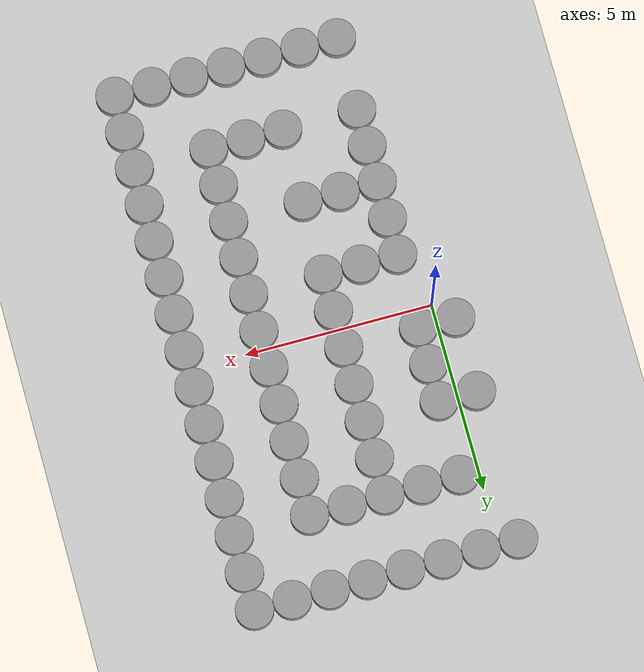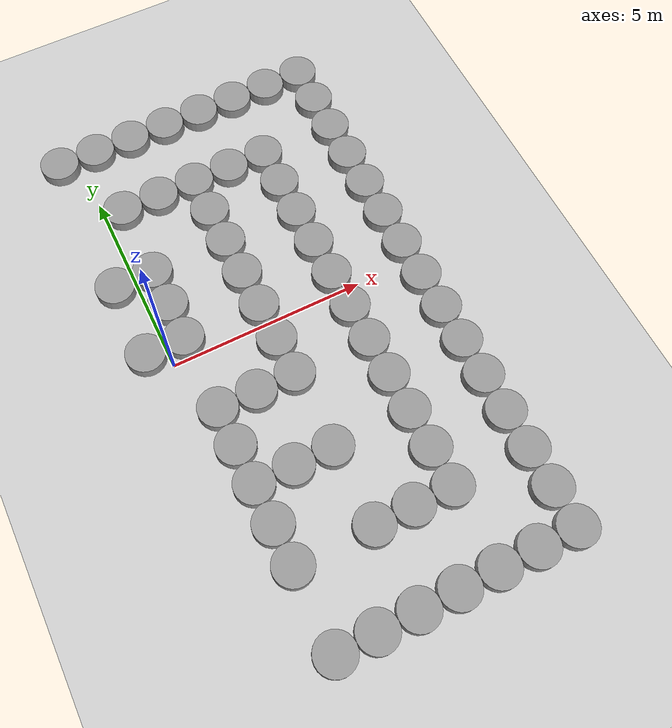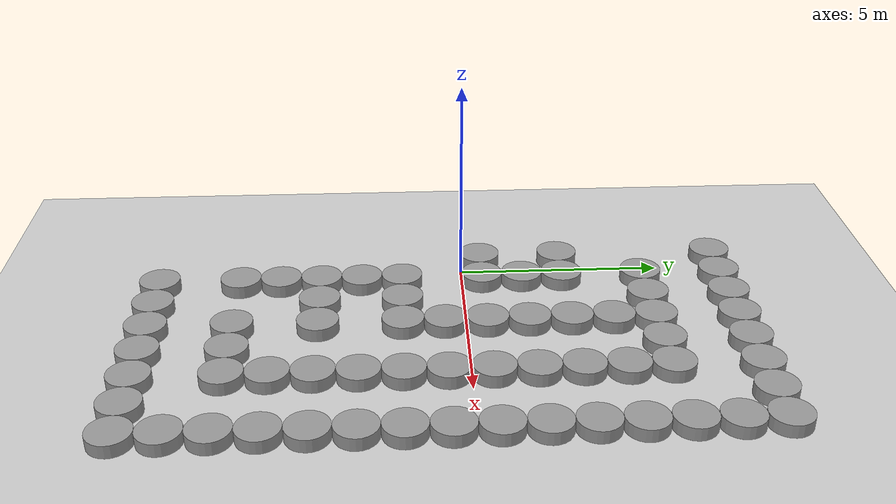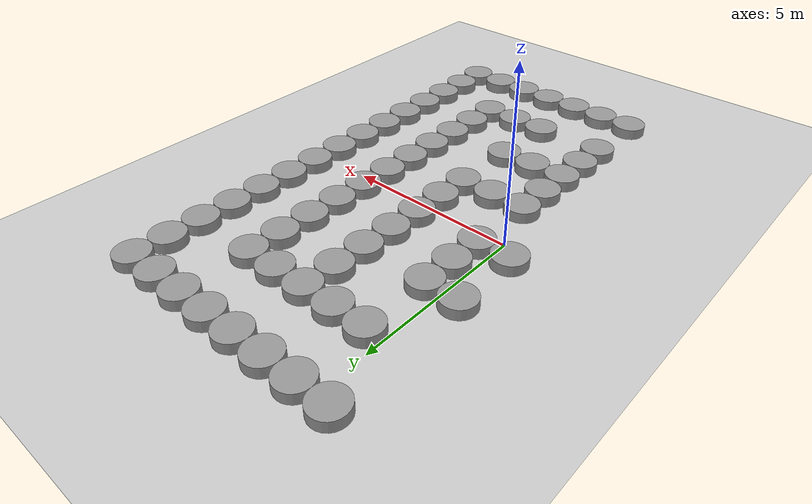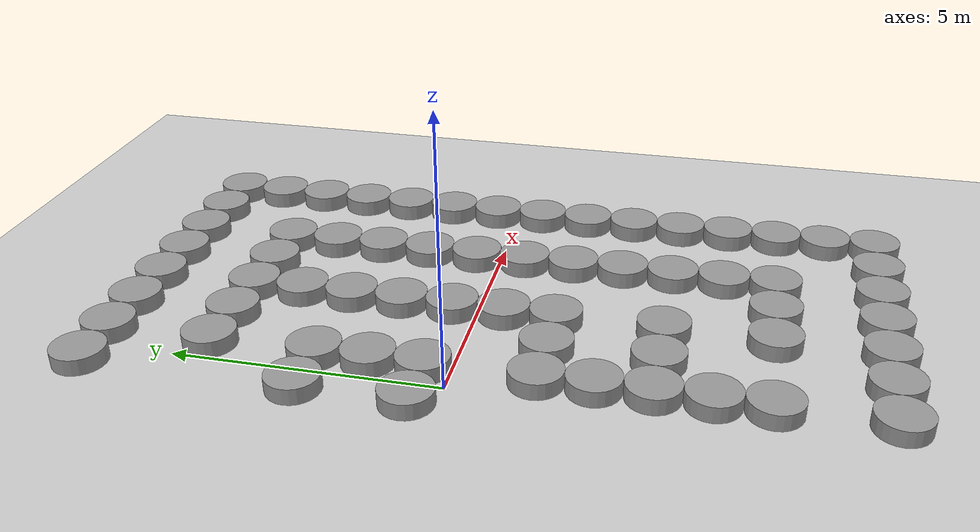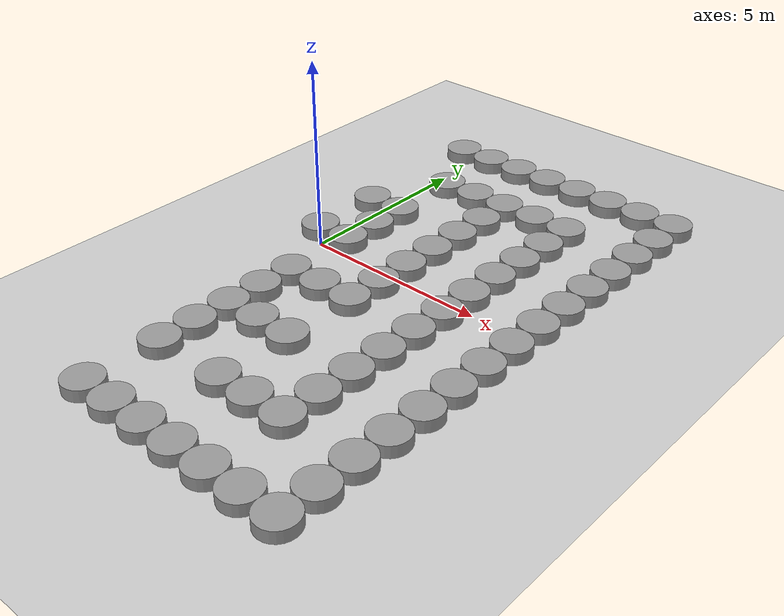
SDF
<sdf version="1.8">
 <world name="block_maze">
  <model name="ground_plane">
   <static>true</static>
   <link name="link">
    <collision name="collision">
     <geometry><plane><normal>0 0 1</normal><size>100 100</size></plane></geometry>
    </collision>
    <visual name="visual">
     <geometry><plane><normal>0 0 1</normal><size>100 100</size></plane></geometry>
     <material><ambient>0.5 0.5 0.5 1</ambient><diffuse>0.8 0.8 0.8 1</diffuse></material>
    </visual>
   </link>
  </model>
  <model name="wall_8_0">
   <static>true</static>
   <pose>0.5 -7.5 0.1 0 0 0</pose>
   <link name="link">
    <collision name="collision">
     <geometry><cylinder><radius>0.5</radius><length>0.4</length></cylinder></geometry>
    </collision>
    <visual name="visual">
     <geometry><cylinder><radius>0.5</radius><length>0.4</length></cylinder></geometry>
     <material><ambient>0.6 0.6 0.6 1</ambient><diffuse>0.6 0.6 0.6 1</diffuse></material>
    </visual>
   </link>
  </model>
  <model name="wall_9_0">
   <static>true</static>
   <pose>1.5 -7.5 0.1 0 0 0</pose>
   <link name="link">
    <collision name="collision">
     <geometry><cylinder><radius>0.5</radius><length>0.4</length></cylinder></geometry>
    </collision>
    <visual name="visual">
     <geometry><cylinder><radius>0.5</radius><length>0.4</length></cylinder></geometry>
     <material><ambient>0.6 0.6 0.6 1</ambient><diffuse>0.6 0.6 0.6 1</diffuse></material>
    </visual>
   </link>
  </model>
  <model name="wall_10_0">
   <static>true</static>
   <pose>2.5 -7.5 0.1 0 0 0</pose>
   <link name="link">
    <collision name="collision">
     <geometry><cylinder><radius>0.5</radius><length>0.4</length></cylinder></geometry>
    </collision>
    <visual name="visual">
     <geometry><cylinder><radius>0.5</radius><length>0.4</length></cylinder></geometry>
     <material><ambient>0.6 0.6 0.6 1</ambient><diffuse>0.6 0.6 0.6 1</diffuse></material>
    </visual>
   </link>
  </model>
  <model name="wall_11_0">
   <static>true</static>
   <pose>3.5 -7.5 0.1 0 0 0</pose>
   <link name="link">
    <collision name="collision">
     <geometry><cylinder><radius>0.5</radius><length>0.4</length></cylinder></geometry>
    </collision>
    <visual name="visual">
     <geometry><cylinder><radius>0.5</radius><length>0.4</length></cylinder></geometry>
     <material><ambient>0.6 0.6 0.6 1</ambient><diffuse>0.6 0.6 0.6 1</diffuse></material>
    </visual>
   </link>
  </model>
  <model name="wall_12_0">
   <static>true</static>
   <pose>4.5 -7.5 0.1 0 0 0</pose>
   <link name="link">
    <collision name="collision">
     <geometry><cylinder><radius>0.5</radius><length>0.4</length></cylinder></geometry>
    </collision>
    <visual name="visual">
     <geometry><cylinder><radius>0.5</radius><length>0.4</length></cylinder></geometry>
     <material><ambient>0.6 0.6 0.6 1</ambient><diffuse>0.6 0.6 0.6 1</diffuse></material>
    </visual>
   </link>
  </model>
  <model name="wall_13_0">
   <static>true</static>
   <pose>5.5 -7.5 0.1 0 0 0</pose>
   <link name="link">
    <collision name="collision">
     <geometry><cylinder><radius>0.5</radius><length>0.4</length></cylinder></geometry>
    </collision>
    <visual name="visual">
     <geometry><cylinder><radius>0.5</radius><length>0.4</length></cylinder></geometry>
     <material><ambient>0.6 0.6 0.6 1</ambient><diffuse>0.6 0.6 0.6 1</diffuse></material>
    </visual>
   </link>
  </model>
  <model name="wall_14_0">
   <static>true</static>
   <pose>6.5 -7.5 0.1 0 0 0</pose>
   <link name="link">
    <collision name="collision">
     <geometry><cylinder><radius>0.5</radius><length>0.4</length></cylinder></geometry>
    </collision>
    <visual name="visual">
     <geometry><cylinder><radius>0.5</radius><length>0.4</length></cylinder></geometry>
     <material><ambient>0.6 0.6 0.6 1</ambient><diffuse>0.6 0.6 0.6 1</diffuse></material>
    </visual>
   </link>
  </model>
  <model name="wall_14_1">
   <static>true</static>
   <pose>6.5 -6.5 0.1 0 0 0</pose>
   <link name="link">
    <collision name="collision">
     <geometry><cylinder><radius>0.5</radius><length>0.4</length></cylinder></geometry>
    </collision>
    <visual name="visual">
     <geometry><cylinder><radius>0.5</radius><length>0.4</length></cylinder></geometry>
     <material><ambient>0.6 0.6 0.6 1</ambient><diffuse>0.6 0.6 0.6 1</diffuse></material>
    </visual>
   </link>
  </model>
  <model name="wall_8_2">
   <static>true</static>
   <pose>0.5 -5.5 0.1 0 0 0</pose>
   <link name="link">
    <collision name="collision">
     <geometry><cylinder><radius>0.5</radius><length>0.4</length></cylinder></geometry>
    </collision>
    <visual name="visual">
     <geometry><cylinder><radius>0.5</radius><length>0.4</length></cylinder></geometry>
     <material><ambient>0.6 0.6 0.6 1</ambient><diffuse>0.6 0.6 0.6 1</diffuse></material>
    </visual>
   </link>
  </model>
  <model name="wall_10_2">
   <static>true</static>
   <pose>2.5 -5.5 0.1 0 0 0</pose>
   <link name="link">
    <collision name="collision">
     <geometry><cylinder><radius>0.5</radius><length>0.4</length></cylinder></geometry>
    </collision>
    <visual name="visual">
     <geometry><cylinder><radius>0.5</radius><length>0.4</length></cylinder></geometry>
     <material><ambient>0.6 0.6 0.6 1</ambient><diffuse>0.6 0.6 0.6 1</diffuse></material>
    </visual>
   </link>
  </model>
  <model name="wall_11_2">
   <static>true</static>
   <pose>3.5 -5.5 0.1 0 0 0</pose>
   <link name="link">
    <collision name="collision">
     <geometry><cylinder><radius>0.5</radius><length>0.4</length></cylinder></geometry>
    </collision>
    <visual name="visual">
     <geometry><cylinder><radius>0.5</radius><length>0.4</length></cylinder></geometry>
     <material><ambient>0.6 0.6 0.6 1</ambient><diffuse>0.6 0.6 0.6 1</diffuse></material>
    </visual>
   </link>
  </model>
  <model name="wall_12_2">
   <static>true</static>
   <pose>4.5 -5.5 0.1 0 0 0</pose>
   <link name="link">
    <collision name="collision">
     <geometry><cylinder><radius>0.5</radius><length>0.4</length></cylinder></geometry>
    </collision>
    <visual name="visual">
     <geometry><cylinder><radius>0.5</radius><length>0.4</length></cylinder></geometry>
     <material><ambient>0.6 0.6 0.6 1</ambient><diffuse>0.6 0.6 0.6 1</diffuse></material>
    </visual>
   </link>
  </model>
  <model name="wall_14_2">
   <static>true</static>
   <pose>6.5 -5.5 0.1 0 0 0</pose>
   <link name="link">
    <collision name="collision">
     <geometry><cylinder><radius>0.5</radius><length>0.4</length></cylinder></geometry>
    </collision>
    <visual name="visual">
     <geometry><cylinder><radius>0.5</radius><length>0.4</length></cylinder></geometry>
     <material><ambient>0.6 0.6 0.6 1</ambient><diffuse>0.6 0.6 0.6 1</diffuse></material>
    </visual>
   </link>
  </model>
  <model name="wall_8_3">
   <static>true</static>
   <pose>0.5 -4.5 0.1 0 0 0</pose>
   <link name="link">
    <collision name="collision">
     <geometry><cylinder><radius>0.5</radius><length>0.4</length></cylinder></geometry>
    </collision>
    <visual name="visual">
     <geometry><cylinder><radius>0.5</radius><length>0.4</length></cylinder></geometry>
     <material><ambient>0.6 0.6 0.6 1</ambient><diffuse>0.6 0.6 0.6 1</diffuse></material>
    </visual>
   </link>
  </model>
  <model name="wall_12_3">
   <static>true</static>
   <pose>4.5 -4.5 0.1 0 0 0</pose>
   <link name="link">
    <collision name="collision">
     <geometry><cylinder><radius>0.5</radius><length>0.4</length></cylinder></geometry>
    </collision>
    <visual name="visual">
     <geometry><cylinder><radius>0.5</radius><length>0.4</length></cylinder></geometry>
     <material><ambient>0.6 0.6 0.6 1</ambient><diffuse>0.6 0.6 0.6 1</diffuse></material>
    </visual>
   </link>
  </model>
  <model name="wall_14_3">
   <static>true</static>
   <pose>6.5 -4.5 0.1 0 0 0</pose>
   <link name="link">
    <collision name="collision">
     <geometry><cylinder><radius>0.5</radius><length>0.4</length></cylinder></geometry>
    </collision>
    <visual name="visual">
     <geometry><cylinder><radius>0.5</radius><length>0.4</length></cylinder></geometry>
     <material><ambient>0.6 0.6 0.6 1</ambient><diffuse>0.6 0.6 0.6 1</diffuse></material>
    </visual>
   </link>
  </model>
  <model name="wall_8_4">
   <static>true</static>
   <pose>0.5 -3.5 0.1 0 0 0</pose>
   <link name="link">
    <collision name="collision">
     <geometry><cylinder><radius>0.5</radius><length>0.4</length></cylinder></geometry>
    </collision>
    <visual name="visual">
     <geometry><cylinder><radius>0.5</radius><length>0.4</length></cylinder></geometry>
     <material><ambient>0.6 0.6 0.6 1</ambient><diffuse>0.6 0.6 0.6 1</diffuse></material>
    </visual>
   </link>
  </model>
  <model name="wall_9_4">
   <static>true</static>
   <pose>1.5 -3.5 0.1 0 0 0</pose>
   <link name="link">
    <collision name="collision">
     <geometry><cylinder><radius>0.5</radius><length>0.4</length></cylinder></geometry>
    </collision>
    <visual name="visual">
     <geometry><cylinder><radius>0.5</radius><length>0.4</length></cylinder></geometry>
     <material><ambient>0.6 0.6 0.6 1</ambient><diffuse>0.6 0.6 0.6 1</diffuse></material>
    </visual>
   </link>
  </model>
  <model name="wall_10_4">
   <static>true</static>
   <pose>2.5 -3.5 0.1 0 0 0</pose>
   <link name="link">
    <collision name="collision">
     <geometry><cylinder><radius>0.5</radius><length>0.4</length></cylinder></geometry>
    </collision>
    <visual name="visual">
     <geometry><cylinder><radius>0.5</radius><length>0.4</length></cylinder></geometry>
     <material><ambient>0.6 0.6 0.6 1</ambient><diffuse>0.6 0.6 0.6 1</diffuse></material>
    </visual>
   </link>
  </model>
  <model name="wall_12_4">
   <static>true</static>
   <pose>4.5 -3.5 0.1 0 0 0</pose>
   <link name="link">
    <collision name="collision">
     <geometry><cylinder><radius>0.5</radius><length>0.4</length></cylinder></geometry>
    </collision>
    <visual name="visual">
     <geometry><cylinder><radius>0.5</radius><length>0.4</length></cylinder></geometry>
     <material><ambient>0.6 0.6 0.6 1</ambient><diffuse>0.6 0.6 0.6 1</diffuse></material>
    </visual>
   </link>
  </model>
  <model name="wall_14_4">
   <static>true</static>
   <pose>6.5 -3.5 0.1 0 0 0</pose>
   <link name="link">
    <collision name="collision">
     <geometry><cylinder><radius>0.5</radius><length>0.4</length></cylinder></geometry>
    </collision>
    <visual name="visual">
     <geometry><cylinder><radius>0.5</radius><length>0.4</length></cylinder></geometry>
     <material><ambient>0.6 0.6 0.6 1</ambient><diffuse>0.6 0.6 0.6 1</diffuse></material>
    </visual>
   </link>
  </model>
  <model name="wall_8_5">
   <static>true</static>
   <pose>0.5 -2.5 0.1 0 0 0</pose>
   <link name="link">
    <collision name="collision">
     <geometry><cylinder><radius>0.5</radius><length>0.4</length></cylinder></geometry>
    </collision>
    <visual name="visual">
     <geometry><cylinder><radius>0.5</radius><length>0.4</length></cylinder></geometry>
     <material><ambient>0.6 0.6 0.6 1</ambient><diffuse>0.6 0.6 0.6 1</diffuse></material>
    </visual>
   </link>
  </model>
  <model name="wall_12_5">
   <static>true</static>
   <pose>4.5 -2.5 0.1 0 0 0</pose>
   <link name="link">
    <collision name="collision">
     <geometry><cylinder><radius>0.5</radius><length>0.4</length></cylinder></geometry>
    </collision>
    <visual name="visual">
     <geometry><cylinder><radius>0.5</radius><length>0.4</length></cylinder></geometry>
     <material><ambient>0.6 0.6 0.6 1</ambient><diffuse>0.6 0.6 0.6 1</diffuse></material>
    </visual>
   </link>
  </model>
  <model name="wall_14_5">
   <static>true</static>
   <pose>6.5 -2.5 0.1 0 0 0</pose>
   <link name="link">
    <collision name="collision">
     <geometry><cylinder><radius>0.5</radius><length>0.4</length></cylinder></geometry>
    </collision>
    <visual name="visual">
     <geometry><cylinder><radius>0.5</radius><length>0.4</length></cylinder></geometry>
     <material><ambient>0.6 0.6 0.6 1</ambient><diffuse>0.6 0.6 0.6 1</diffuse></material>
    </visual>
   </link>
  </model>
  <model name="wall_8_6">
   <static>true</static>
   <pose>0.5 -1.5 0.1 0 0 0</pose>
   <link name="link">
    <collision name="collision">
     <geometry><cylinder><radius>0.5</radius><length>0.4</length></cylinder></geometry>
    </collision>
    <visual name="visual">
     <geometry><cylinder><radius>0.5</radius><length>0.4</length></cylinder></geometry>
     <material><ambient>0.6 0.6 0.6 1</ambient><diffuse>0.6 0.6 0.6 1</diffuse></material>
    </visual>
   </link>
  </model>
  <model name="wall_9_6">
   <static>true</static>
   <pose>1.5 -1.5 0.1 0 0 0</pose>
   <link name="link">
    <collision name="collision">
     <geometry><cylinder><radius>0.5</radius><length>0.4</length></cylinder></geometry>
    </collision>
    <visual name="visual">
     <geometry><cylinder><radius>0.5</radius><length>0.4</length></cylinder></geometry>
     <material><ambient>0.6 0.6 0.6 1</ambient><diffuse>0.6 0.6 0.6 1</diffuse></material>
    </visual>
   </link>
  </model>
  <model name="wall_10_6">
   <static>true</static>
   <pose>2.5 -1.5 0.1 0 0 0</pose>
   <link name="link">
    <collision name="collision">
     <geometry><cylinder><radius>0.5</radius><length>0.4</length></cylinder></geometry>
    </collision>
    <visual name="visual">
     <geometry><cylinder><radius>0.5</radius><length>0.4</length></cylinder></geometry>
     <material><ambient>0.6 0.6 0.6 1</ambient><diffuse>0.6 0.6 0.6 1</diffuse></material>
    </visual>
   </link>
  </model>
  <model name="wall_12_6">
   <static>true</static>
   <pose>4.5 -1.5 0.1 0 0 0</pose>
   <link name="link">
    <collision name="collision">
     <geometry><cylinder><radius>0.5</radius><length>0.4</length></cylinder></geometry>
    </collision>
    <visual name="visual">
     <geometry><cylinder><radius>0.5</radius><length>0.4</length></cylinder></geometry>
     <material><ambient>0.6 0.6 0.6 1</ambient><diffuse>0.6 0.6 0.6 1</diffuse></material>
    </visual>
   </link>
  </model>
  <model name="wall_14_6">
   <static>true</static>
   <pose>6.5 -1.5 0.1 0 0 0</pose>
   <link name="link">
    <collision name="collision">
     <geometry><cylinder><radius>0.5</radius><length>0.4</length></cylinder></geometry>
    </collision>
    <visual name="visual">
     <geometry><cylinder><radius>0.5</radius><length>0.4</length></cylinder></geometry>
     <material><ambient>0.6 0.6 0.6 1</ambient><diffuse>0.6 0.6 0.6 1</diffuse></material>
    </visual>
   </link>
  </model>
  <model name="wall_10_7">
   <static>true</static>
   <pose>2.5 -0.5 0.1 0 0 0</pose>
   <link name="link">
    <collision name="collision">
     <geometry><cylinder><radius>0.5</radius><length>0.4</length></cylinder></geometry>
    </collision>
    <visual name="visual">
     <geometry><cylinder><radius>0.5</radius><length>0.4</length></cylinder></geometry>
     <material><ambient>0.6 0.6 0.6 1</ambient><diffuse>0.6 0.6 0.6 1</diffuse></material>
    </visual>
   </link>
  </model>
  <model name="wall_12_7">
   <static>true</static>
   <pose>4.5 -0.5 0.1 0 0 0</pose>
   <link name="link">
    <collision name="collision">
     <geometry><cylinder><radius>0.5</radius><length>0.4</length></cylinder></geometry>
    </collision>
    <visual name="visual">
     <geometry><cylinder><radius>0.5</radius><length>0.4</length></cylinder></geometry>
     <material><ambient>0.6 0.6 0.6 1</ambient><diffuse>0.6 0.6 0.6 1</diffuse></material>
    </visual>
   </link>
  </model>
  <model name="wall_14_7">
   <static>true</static>
   <pose>6.5 -0.5 0.1 0 0 0</pose>
   <link name="link">
    <collision name="collision">
     <geometry><cylinder><radius>0.5</radius><length>0.4</length></cylinder></geometry>
    </collision>
    <visual name="visual">
     <geometry><cylinder><radius>0.5</radius><length>0.4</length></cylinder></geometry>
     <material><ambient>0.6 0.6 0.6 1</ambient><diffuse>0.6 0.6 0.6 1</diffuse></material>
    </visual>
   </link>
  </model>
  <model name="wall_7_8">
   <static>true</static>
   <pose>-0.5 0.5 0.1 0 0 0</pose>
   <link name="link">
    <collision name="collision">
     <geometry><cylinder><radius>0.5</radius><length>0.4</length></cylinder></geometry>
    </collision>
    <visual name="visual">
     <geometry><cylinder><radius>0.5</radius><length>0.4</length></cylinder></geometry>
     <material><ambient>0.6 0.6 0.6 1</ambient><diffuse>0.6 0.6 0.6 1</diffuse></material>
    </visual>
   </link>
  </model>
  <model name="wall_8_8">
   <static>true</static>
   <pose>0.5 0.5 0.1 0 0 0</pose>
   <link name="link">
    <collision name="collision">
     <geometry><cylinder><radius>0.5</radius><length>0.4</length></cylinder></geometry>
    </collision>
    <visual name="visual">
     <geometry><cylinder><radius>0.5</radius><length>0.4</length></cylinder></geometry>
     <material><ambient>0.6 0.6 0.6 1</ambient><diffuse>0.6 0.6 0.6 1</diffuse></material>
    </visual>
   </link>
  </model>
  <model name="wall_10_8">
   <static>true</static>
   <pose>2.5 0.5 0.1 0 0 0</pose>
   <link name="link">
    <collision name="collision">
     <geometry><cylinder><radius>0.5</radius><length>0.4</length></cylinder></geometry>
    </collision>
    <visual name="visual">
     <geometry><cylinder><radius>0.5</radius><length>0.4</length></cylinder></geometry>
     <material><ambient>0.6 0.6 0.6 1</ambient><diffuse>0.6 0.6 0.6 1</diffuse></material>
    </visual>
   </link>
  </model>
  <model name="wall_12_8">
   <static>true</static>
   <pose>4.5 0.5 0.1 0 0 0</pose>
   <link name="link">
    <collision name="collision">
     <geometry><cylinder><radius>0.5</radius><length>0.4</length></cylinder></geometry>
    </collision>
    <visual name="visual">
     <geometry><cylinder><radius>0.5</radius><length>0.4</length></cylinder></geometry>
     <material><ambient>0.6 0.6 0.6 1</ambient><diffuse>0.6 0.6 0.6 1</diffuse></material>
    </visual>
   </link>
  </model>
  <model name="wall_14_8">
   <static>true</static>
   <pose>6.5 0.5 0.1 0 0 0</pose>
   <link name="link">
    <collision name="collision">
     <geometry><cylinder><radius>0.5</radius><length>0.4</length></cylinder></geometry>
    </collision>
    <visual name="visual">
     <geometry><cylinder><radius>0.5</radius><length>0.4</length></cylinder></geometry>
     <material><ambient>0.6 0.6 0.6 1</ambient><diffuse>0.6 0.6 0.6 1</diffuse></material>
    </visual>
   </link>
  </model>
  <model name="wall_8_9">
   <static>true</static>
   <pose>0.5 1.5 0.1 0 0 0</pose>
   <link name="link">
    <collision name="collision">
     <geometry><cylinder><radius>0.5</radius><length>0.4</length></cylinder></geometry>
    </collision>
    <visual name="visual">
     <geometry><cylinder><radius>0.5</radius><length>0.4</length></cylinder></geometry>
     <material><ambient>0.6 0.6 0.6 1</ambient><diffuse>0.6 0.6 0.6 1</diffuse></material>
    </visual>
   </link>
  </model>
  <model name="wall_10_9">
   <static>true</static>
   <pose>2.5 1.5 0.1 0 0 0</pose>
   <link name="link">
    <collision name="collision">
     <geometry><cylinder><radius>0.5</radius><length>0.4</length></cylinder></geometry>
    </collision>
    <visual name="visual">
     <geometry><cylinder><radius>0.5</radius><length>0.4</length></cylinder></geometry>
     <material><ambient>0.6 0.6 0.6 1</ambient><diffuse>0.6 0.6 0.6 1</diffuse></material>
    </visual>
   </link>
  </model>
  <model name="wall_12_9">
   <static>true</static>
   <pose>4.5 1.5 0.1 0 0 0</pose>
   <link name="link">
    <collision name="collision">
     <geometry><cylinder><radius>0.5</radius><length>0.4</length></cylinder></geometry>
    </collision>
    <visual name="visual">
     <geometry><cylinder><radius>0.5</radius><length>0.4</length></cylinder></geometry>
     <material><ambient>0.6 0.6 0.6 1</ambient><diffuse>0.6 0.6 0.6 1</diffuse></material>
    </visual>
   </link>
  </model>
  <model name="wall_14_9">
   <static>true</static>
   <pose>6.5 1.5 0.1 0 0 0</pose>
   <link name="link">
    <collision name="collision">
     <geometry><cylinder><radius>0.5</radius><length>0.4</length></cylinder></geometry>
    </collision>
    <visual name="visual">
     <geometry><cylinder><radius>0.5</radius><length>0.4</length></cylinder></geometry>
     <material><ambient>0.6 0.6 0.6 1</ambient><diffuse>0.6 0.6 0.6 1</diffuse></material>
    </visual>
   </link>
  </model>
  <model name="wall_7_10">
   <static>true</static>
   <pose>-0.5 2.5 0.1 0 0 0</pose>
   <link name="link">
    <collision name="collision">
     <geometry><cylinder><radius>0.5</radius><length>0.4</length></cylinder></geometry>
    </collision>
    <visual name="visual">
     <geometry><cylinder><radius>0.5</radius><length>0.4</length></cylinder></geometry>
     <material><ambient>0.6 0.6 0.6 1</ambient><diffuse>0.6 0.6 0.6 1</diffuse></material>
    </visual>
   </link>
  </model>
  <model name="wall_8_10">
   <static>true</static>
   <pose>0.5 2.5 0.1 0 0 0</pose>
   <link name="link">
    <collision name="collision">
     <geometry><cylinder><radius>0.5</radius><length>0.4</length></cylinder></geometry>
    </collision>
    <visual name="visual">
     <geometry><cylinder><radius>0.5</radius><length>0.4</length></cylinder></geometry>
     <material><ambient>0.6 0.6 0.6 1</ambient><diffuse>0.6 0.6 0.6 1</diffuse></material>
    </visual>
   </link>
  </model>
  <model name="wall_10_10">
   <static>true</static>
   <pose>2.5 2.5 0.1 0 0 0</pose>
   <link name="link">
    <collision name="collision">
     <geometry><cylinder><radius>0.5</radius><length>0.4</length></cylinder></geometry>
    </collision>
    <visual name="visual">
     <geometry><cylinder><radius>0.5</radius><length>0.4</length></cylinder></geometry>
     <material><ambient>0.6 0.6 0.6 1</ambient><diffuse>0.6 0.6 0.6 1</diffuse></material>
    </visual>
   </link>
  </model>
  <model name="wall_12_10">
   <static>true</static>
   <pose>4.5 2.5 0.1 0 0 0</pose>
   <link name="link">
    <collision name="collision">
     <geometry><cylinder><radius>0.5</radius><length>0.4</length></cylinder></geometry>
    </collision>
    <visual name="visual">
     <geometry><cylinder><radius>0.5</radius><length>0.4</length></cylinder></geometry>
     <material><ambient>0.6 0.6 0.6 1</ambient><diffuse>0.6 0.6 0.6 1</diffuse></material>
    </visual>
   </link>
  </model>
  <model name="wall_14_10">
   <static>true</static>
   <pose>6.5 2.5 0.1 0 0 0</pose>
   <link name="link">
    <collision name="collision">
     <geometry><cylinder><radius>0.5</radius><length>0.4</length></cylinder></geometry>
    </collision>
    <visual name="visual">
     <geometry><cylinder><radius>0.5</radius><length>0.4</length></cylinder></geometry>
     <material><ambient>0.6 0.6 0.6 1</ambient><diffuse>0.6 0.6 0.6 1</diffuse></material>
    </visual>
   </link>
  </model>
  <model name="wall_10_11">
   <static>true</static>
   <pose>2.5 3.5 0.1 0 0 0</pose>
   <link name="link">
    <collision name="collision">
     <geometry><cylinder><radius>0.5</radius><length>0.4</length></cylinder></geometry>
    </collision>
    <visual name="visual">
     <geometry><cylinder><radius>0.5</radius><length>0.4</length></cylinder></geometry>
     <material><ambient>0.6 0.6 0.6 1</ambient><diffuse>0.6 0.6 0.6 1</diffuse></material>
    </visual>
   </link>
  </model>
  <model name="wall_12_11">
   <static>true</static>
   <pose>4.5 3.5 0.1 0 0 0</pose>
   <link name="link">
    <collision name="collision">
     <geometry><cylinder><radius>0.5</radius><length>0.4</length></cylinder></geometry>
    </collision>
    <visual name="visual">
     <geometry><cylinder><radius>0.5</radius><length>0.4</length></cylinder></geometry>
     <material><ambient>0.6 0.6 0.6 1</ambient><diffuse>0.6 0.6 0.6 1</diffuse></material>
    </visual>
   </link>
  </model>
  <model name="wall_14_11">
   <static>true</static>
   <pose>6.5 3.5 0.1 0 0 0</pose>
   <link name="link">
    <collision name="collision">
     <geometry><cylinder><radius>0.5</radius><length>0.4</length></cylinder></geometry>
    </collision>
    <visual name="visual">
     <geometry><cylinder><radius>0.5</radius><length>0.4</length></cylinder></geometry>
     <material><ambient>0.6 0.6 0.6 1</ambient><diffuse>0.6 0.6 0.6 1</diffuse></material>
    </visual>
   </link>
  </model>
  <model name="wall_8_12">
   <static>true</static>
   <pose>0.5 4.5 0.1 0 0 0</pose>
   <link name="link">
    <collision name="collision">
     <geometry><cylinder><radius>0.5</radius><length>0.4</length></cylinder></geometry>
    </collision>
    <visual name="visual">
     <geometry><cylinder><radius>0.5</radius><length>0.4</length></cylinder></geometry>
     <material><ambient>0.6 0.6 0.6 1</ambient><diffuse>0.6 0.6 0.6 1</diffuse></material>
    </visual>
   </link>
  </model>
  <model name="wall_9_12">
   <static>true</static>
   <pose>1.5 4.5 0.1 0 0 0</pose>
   <link name="link">
    <collision name="collision">
     <geometry><cylinder><radius>0.5</radius><length>0.4</length></cylinder></geometry>
    </collision>
    <visual name="visual">
     <geometry><cylinder><radius>0.5</radius><length>0.4</length></cylinder></geometry>
     <material><ambient>0.6 0.6 0.6 1</ambient><diffuse>0.6 0.6 0.6 1</diffuse></material>
    </visual>
   </link>
  </model>
  <model name="wall_10_12">
   <static>true</static>
   <pose>2.5 4.5 0.1 0 0 0</pose>
   <link name="link">
    <collision name="collision">
     <geometry><cylinder><radius>0.5</radius><length>0.4</length></cylinder></geometry>
    </collision>
    <visual name="visual">
     <geometry><cylinder><radius>0.5</radius><length>0.4</length></cylinder></geometry>
     <material><ambient>0.6 0.6 0.6 1</ambient><diffuse>0.6 0.6 0.6 1</diffuse></material>
    </visual>
   </link>
  </model>
  <model name="wall_11_12">
   <static>true</static>
   <pose>3.5 4.5 0.1 0 0 0</pose>
   <link name="link">
    <collision name="collision">
     <geometry><cylinder><radius>0.5</radius><length>0.4</length></cylinder></geometry>
    </collision>
    <visual name="visual">
     <geometry><cylinder><radius>0.5</radius><length>0.4</length></cylinder></geometry>
     <material><ambient>0.6 0.6 0.6 1</ambient><diffuse>0.6 0.6 0.6 1</diffuse></material>
    </visual>
   </link>
  </model>
  <model name="wall_12_12">
   <static>true</static>
   <pose>4.5 4.5 0.1 0 0 0</pose>
   <link name="link">
    <collision name="collision">
     <geometry><cylinder><radius>0.5</radius><length>0.4</length></cylinder></geometry>
    </collision>
    <visual name="visual">
     <geometry><cylinder><radius>0.5</radius><length>0.4</length></cylinder></geometry>
     <material><ambient>0.6 0.6 0.6 1</ambient><diffuse>0.6 0.6 0.6 1</diffuse></material>
    </visual>
   </link>
  </model>
  <model name="wall_14_12">
   <static>true</static>
   <pose>6.5 4.5 0.1 0 0 0</pose>
   <link name="link">
    <collision name="collision">
     <geometry><cylinder><radius>0.5</radius><length>0.4</length></cylinder></geometry>
    </collision>
    <visual name="visual">
     <geometry><cylinder><radius>0.5</radius><length>0.4</length></cylinder></geometry>
     <material><ambient>0.6 0.6 0.6 1</ambient><diffuse>0.6 0.6 0.6 1</diffuse></material>
    </visual>
   </link>
  </model>
  <model name="wall_14_13">
   <static>true</static>
   <pose>6.5 5.5 0.1 0 0 0</pose>
   <link name="link">
    <collision name="collision">
     <geometry><cylinder><radius>0.5</radius><length>0.4</length></cylinder></geometry>
    </collision>
    <visual name="visual">
     <geometry><cylinder><radius>0.5</radius><length>0.4</length></cylinder></geometry>
     <material><ambient>0.6 0.6 0.6 1</ambient><diffuse>0.6 0.6 0.6 1</diffuse></material>
    </visual>
   </link>
  </model>
  <model name="wall_7_14">
   <static>true</static>
   <pose>-0.5 6.5 0.1 0 0 0</pose>
   <link name="link">
    <collision name="collision">
     <geometry><cylinder><radius>0.5</radius><length>0.4</length></cylinder></geometry>
    </collision>
    <visual name="visual">
     <geometry><cylinder><radius>0.5</radius><length>0.4</length></cylinder></geometry>
     <material><ambient>0.6 0.6 0.6 1</ambient><diffuse>0.6 0.6 0.6 1</diffuse></material>
    </visual>
   </link>
  </model>
  <model name="wall_8_14">
   <static>true</static>
   <pose>0.5 6.5 0.1 0 0 0</pose>
   <link name="link">
    <collision name="collision">
     <geometry><cylinder><radius>0.5</radius><length>0.4</length></cylinder></geometry>
    </collision>
    <visual name="visual">
     <geometry><cylinder><radius>0.5</radius><length>0.4</length></cylinder></geometry>
     <material><ambient>0.6 0.6 0.6 1</ambient><diffuse>0.6 0.6 0.6 1</diffuse></material>
    </visual>
   </link>
  </model>
  <model name="wall_9_14">
   <static>true</static>
   <pose>1.5 6.5 0.1 0 0 0</pose>
   <link name="link">
    <collision name="collision">
     <geometry><cylinder><radius>0.5</radius><length>0.4</length></cylinder></geometry>
    </collision>
    <visual name="visual">
     <geometry><cylinder><radius>0.5</radius><length>0.4</length></cylinder></geometry>
     <material><ambient>0.6 0.6 0.6 1</ambient><diffuse>0.6 0.6 0.6 1</diffuse></material>
    </visual>
   </link>
  </model>
  <model name="wall_10_14">
   <static>true</static>
   <pose>2.5 6.5 0.1 0 0 0</pose>
   <link name="link">
    <collision name="collision">
     <geometry><cylinder><radius>0.5</radius><length>0.4</length></cylinder></geometry>
    </collision>
    <visual name="visual">
     <geometry><cylinder><radius>0.5</radius><length>0.4</length></cylinder></geometry>
     <material><ambient>0.6 0.6 0.6 1</ambient><diffuse>0.6 0.6 0.6 1</diffuse></material>
    </visual>
   </link>
  </model>
  <model name="wall_11_14">
   <static>true</static>
   <pose>3.5 6.5 0.1 0 0 0</pose>
   <link name="link">
    <collision name="collision">
     <geometry><cylinder><radius>0.5</radius><length>0.4</length></cylinder></geometry>
    </collision>
    <visual name="visual">
     <geometry><cylinder><radius>0.5</radius><length>0.4</length></cylinder></geometry>
     <material><ambient>0.6 0.6 0.6 1</ambient><diffuse>0.6 0.6 0.6 1</diffuse></material>
    </visual>
   </link>
  </model>
  <model name="wall_12_14">
   <static>true</static>
   <pose>4.5 6.5 0.1 0 0 0</pose>
   <link name="link">
    <collision name="collision">
     <geometry><cylinder><radius>0.5</radius><length>0.4</length></cylinder></geometry>
    </collision>
    <visual name="visual">
     <geometry><cylinder><radius>0.5</radius><length>0.4</length></cylinder></geometry>
     <material><ambient>0.6 0.6 0.6 1</ambient><diffuse>0.6 0.6 0.6 1</diffuse></material>
    </visual>
   </link>
  </model>
  <model name="wall_13_14">
   <static>true</static>
   <pose>5.5 6.5 0.1 0 0 0</pose>
   <link name="link">
    <collision name="collision">
     <geometry><cylinder><radius>0.5</radius><length>0.4</length></cylinder></geometry>
    </collision>
    <visual name="visual">
     <geometry><cylinder><radius>0.5</radius><length>0.4</length></cylinder></geometry>
     <material><ambient>0.6 0.6 0.6 1</ambient><diffuse>0.6 0.6 0.6 1</diffuse></material>
    </visual>
   </link>
  </model>
  <model name="wall_14_14">
   <static>true</static>
   <pose>6.5 6.5 0.1 0 0 0</pose>
   <link name="link">
    <collision name="collision">
     <geometry><cylinder><radius>0.5</radius><length>0.4</length></cylinder></geometry>
    </collision>
    <visual name="visual">
     <geometry><cylinder><radius>0.5</radius><length>0.4</length></cylinder></geometry>
     <material><ambient>0.6 0.6 0.6 1</ambient><diffuse>0.6 0.6 0.6 1</diffuse></material>
    </visual>
   </link>
  </model>
 </world>
</sdf>
